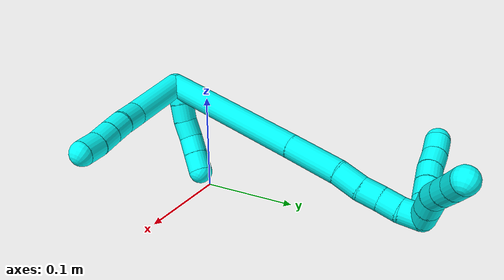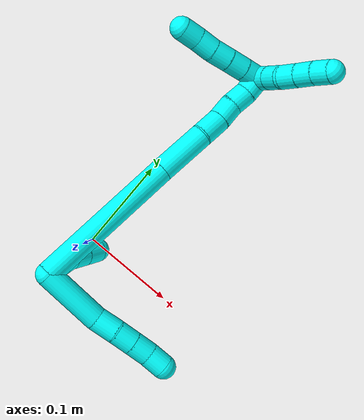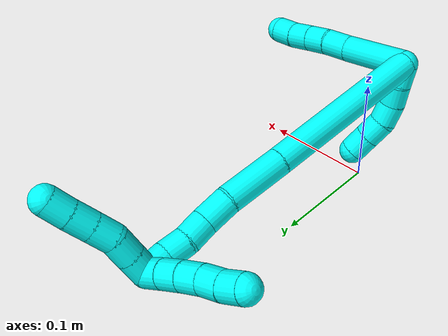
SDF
<sdf version="1.7">
 <world name="default">
  <model name="3">
   <static>0</static>
   <link name="3">
    <collision name="collision-cylinder-e_1_2_8">
     <pose>0.012824 0.003706 -0.029985 -3.01862 0.401419 -2.55392</pose>
     <geometry><cylinder><radius>0.0125</radius><length>0.065645</length></cylinder></geometry>
     <surface>
      <friction><ode><mu>1.16</mu><mu2>1.16</mu2><slip1>0</slip1><slip2>0</slip2></ode></friction>
      <contact><ode><kp>1e+06</kp><kd>1</kd><max_vel>0</max_vel><min_depth>0.001</min_depth></ode></contact>
     </surface>
    </collision>
    <visual name="visual-cylinder-e_1_2_8">
     <pose>0.012824 0.003706 -0.029985 -3.01862 0.401419 -2.55392</pose>
     <geometry><cylinder><radius>0.0125</radius><length>0.065645</length></cylinder></geometry>
     <material><ambient>0.003922 1 0.996078 1</ambient></material>
    </visual>
    <collision name="collision-cylinder-e_2_8_9">
     <pose>0.031125 0.011287 -0.069944 -2.77103 0.473021 -1.81966</pose>
     <geometry><cylinder><radius>0.0125</radius><length>0.02404</length></cylinder></geometry>
     <surface>
      <friction><ode><mu>1.16</mu><mu2>1.16</mu2><slip1>0</slip1><slip2>0</slip2></ode></friction>
      <contact><ode><kp>1e+06</kp><kd>1</kd><max_vel>0</max_vel><min_depth>0.001</min_depth></ode></contact>
     </surface>
    </collision>
    <visual name="visual-cylinder-e_2_8_9">
     <pose>0.031125 0.011287 -0.069944 -2.77103 0.473021 -1.81966</pose>
     <geometry><cylinder><radius>0.0125</radius><length>0.02404</length></cylinder></geometry>
     <material><ambient>0.003922 1 0.996078 1</ambient></material>
    </visual>
    <collision name="collision-cylinder-e_3_9_10">
     <pose>0.040329 0.017661 -0.088949 -2.87168 0.378648 -1.90863</pose>
     <geometry><cylinder><radius>0.0125</radius><length>0.02017</length></cylinder></geometry>
     <surface>
      <friction><ode><mu>1.16</mu><mu2>1.16</mu2><slip1>0</slip1><slip2>0</slip2></ode></friction>
      <contact><ode><kp>1e+06</kp><kd>1</kd><max_vel>0</max_vel><min_depth>0.001</min_depth></ode></contact>
     </surface>
    </collision>
    <visual name="visual-cylinder-e_3_9_10">
     <pose>0.040329 0.017661 -0.088949 -2.87168 0.378648 -1.90863</pose>
     <geometry><cylinder><radius>0.0125</radius><length>0.02017</length></cylinder></geometry>
     <material><ambient>0.003922 1 0.996078 1</ambient></material>
    </visual>
    <collision name="collision-cylinder-e_4_10_11">
     <pose>0.047591 0.022529 -0.107092 -2.88716 0.359059 -1.91373</pose>
     <geometry><cylinder><radius>0.0125</radius><length>0.020112</length></cylinder></geometry>
     <surface>
      <friction><ode><mu>1.16</mu><mu2>1.16</mu2><slip1>0</slip1><slip2>0</slip2></ode></friction>
      <contact><ode><kp>1e+06</kp><kd>1</kd><max_vel>0</max_vel><min_depth>0.001</min_depth></ode></contact>
     </surface>
    </collision>
    <visual name="visual-cylinder-e_4_10_11">
     <pose>0.047591 0.022529 -0.107092 -2.88716 0.359059 -1.91373</pose>
     <geometry><cylinder><radius>0.0125</radius><length>0.020112</length></cylinder></geometry>
     <material><ambient>0.003922 1 0.996078 1</ambient></material>
    </visual>
    <collision name="collision-cylinder-e_5_11_6">
     <pose>0.055799 0.026936 -0.124825 -2.90953 0.485488 -2.26173</pose>
     <geometry><cylinder><radius>0.0125</radius><length>0.020033</length></cylinder></geometry>
     <surface>
      <friction><ode><mu>1.16</mu><mu2>1.16</mu2><slip1>0</slip1><slip2>0</slip2></ode></friction>
      <contact><ode><kp>1e+06</kp><kd>1</kd><max_vel>0</max_vel><min_depth>0.001</min_depth></ode></contact>
     </surface>
    </collision>
    <visual name="visual-cylinder-e_5_11_6">
     <pose>0.055799 0.026936 -0.124825 -2.90953 0.485488 -2.26173</pose>
     <geometry><cylinder><radius>0.0125</radius><length>0.020033</length></cylinder></geometry>
     <material><ambient>0.003922 1 0.996078 1</ambient></material>
    </visual>
    <collision name="collision-cylinder-e_1_2_12">
     <pose>-0.008431 0.00091 -0.0053 -2.97163 -1.00306 2.83333</pose>
     <geometry><cylinder><radius>0.0125</radius><length>0.02</length></cylinder></geometry>
     <surface>
      <friction><ode><mu>1.16</mu><mu2>1.16</mu2><slip1>0</slip1><slip2>0</slip2></ode></friction>
      <contact><ode><kp>1e+06</kp><kd>1</kd><max_vel>0</max_vel><min_depth>0.001</min_depth></ode></contact>
     </surface>
    </collision>
    <visual name="visual-cylinder-e_1_2_12">
     <pose>-0.008431 0.00091 -0.0053 -2.97163 -1.00306 2.83333</pose>
     <geometry><cylinder><radius>0.0125</radius><length>0.02</length></cylinder></geometry>
     <material><ambient>0.003922 1 0.996078 1</ambient></material>
    </visual>
    <collision name="collision-cylinder-e_2_12_13">
     <pose>-0.024913 0.001271 -0.016507 3.04913 -0.93569 -2.95897</pose>
     <geometry><cylinder><radius>0.0125</radius><length>0.02</length></cylinder></geometry>
     <surface>
      <friction><ode><mu>1.16</mu><mu2>1.16</mu2><slip1>0</slip1><slip2>0</slip2></ode></friction>
      <contact><ode><kp>1e+06</kp><kd>1</kd><max_vel>0</max_vel><min_depth>0.001</min_depth></ode></contact>
     </surface>
    </collision>
    <visual name="visual-cylinder-e_2_12_13">
     <pose>-0.024913 0.001271 -0.016507 3.04913 -0.93569 -2.95897</pose>
     <geometry><cylinder><radius>0.0125</radius><length>0.02</length></cylinder></geometry>
     <material><ambient>0.003922 1 0.996078 1</ambient></material>
    </visual>
    <collision name="collision-cylinder-e_3_13_14">
     <pose>-0.040768 0.002634 -0.028366 -2.83101 -0.895588 2.51147</pose>
     <geometry><cylinder><radius>0.0125</radius><length>0.02</length></cylinder></geometry>
     <surface>
      <friction><ode><mu>1.16</mu><mu2>1.16</mu2><slip1>0</slip1><slip2>0</slip2></ode></friction>
      <contact><ode><kp>1e+06</kp><kd>1</kd><max_vel>0</max_vel><min_depth>0.001</min_depth></ode></contact>
     </surface>
    </collision>
    <visual name="visual-cylinder-e_3_13_14">
     <pose>-0.040768 0.002634 -0.028366 -2.83101 -0.895588 2.51147</pose>
     <geometry><cylinder><radius>0.0125</radius><length>0.02</length></cylinder></geometry>
     <material><ambient>0.003922 1 0.996078 1</ambient></material>
    </visual>
    <collision name="collision-cylinder-e_4_14_15">
     <pose>-0.054162 0.008639 -0.041529 -2.6252 -0.592916 1.71581</pose>
     <geometry><cylinder><radius>0.0125</radius><length>0.02</length></cylinder></geometry>
     <surface>
      <friction><ode><mu>1.16</mu><mu2>1.16</mu2><slip1>0</slip1><slip2>0</slip2></ode></friction>
      <contact><ode><kp>1e+06</kp><kd>1</kd><max_vel>0</max_vel><min_depth>0.001</min_depth></ode></contact>
     </surface>
    </collision>
    <visual name="visual-cylinder-e_4_14_15">
     <pose>-0.054162 0.008639 -0.041529 -2.6252 -0.592916 1.71581</pose>
     <geometry><cylinder><radius>0.0125</radius><length>0.02</length></cylinder></geometry>
     <material><ambient>0.003922 1 0.996078 1</ambient></material>
    </visual>
    <collision name="collision-cylinder-e_5_15_5">
     <pose>-0.06535 0.016823 -0.055946 -2.62539 -0.594383 1.71877</pose>
     <geometry><cylinder><radius>0.0125</radius><length>0.02</length></cylinder></geometry>
     <surface>
      <friction><ode><mu>1.16</mu><mu2>1.16</mu2><slip1>0</slip1><slip2>0</slip2></ode></friction>
      <contact><ode><kp>1e+06</kp><kd>1</kd><max_vel>0</max_vel><min_depth>0.001</min_depth></ode></contact>
     </surface>
    </collision>
    <visual name="visual-cylinder-e_5_15_5">
     <pose>-0.06535 0.016823 -0.055946 -2.62539 -0.594383 1.71877</pose>
     <geometry><cylinder><radius>0.0125</radius><length>0.02</length></cylinder></geometry>
     <material><ambient>0.003922 1 0.996078 1</ambient></material>
    </visual>
    <collision name="collision-cylinder-e_1_2_16">
     <pose>-0.034043 0.068262 -0.013925 -1.77203 -0.454524 0.551937</pose>
     <geometry><cylinder><radius>0.0125</radius><length>0.155082</length></cylinder></geometry>
     <surface>
      <friction><ode><mu>1.16</mu><mu2>1.16</mu2><slip1>0</slip1><slip2>0</slip2></ode></friction>
      <contact><ode><kp>1e+06</kp><kd>1</kd><max_vel>0</max_vel><min_depth>0.001</min_depth></ode></contact>
     </surface>
    </collision>
    <visual name="visual-cylinder-e_1_2_16">
     <pose>-0.034043 0.068262 -0.013925 -1.77203 -0.454524 0.551937</pose>
     <geometry><cylinder><radius>0.0125</radius><length>0.155082</length></cylinder></geometry>
     <material><ambient>0.003922 1 0.996078 1</ambient></material>
    </visual>
    <collision name="collision-cylinder-e_2_16_17">
     <pose>-0.080083 0.161251 -0.033227 -1.78493 -0.442699 0.544598</pose>
     <geometry><cylinder><radius>0.0125</radius><length>0.056008</length></cylinder></geometry>
     <surface>
      <friction><ode><mu>1.16</mu><mu2>1.16</mu2><slip1>0</slip1><slip2>0</slip2></ode></friction>
      <contact><ode><kp>1e+06</kp><kd>1</kd><max_vel>0</max_vel><min_depth>0.001</min_depth></ode></contact>
     </surface>
    </collision>
    <visual name="visual-cylinder-e_2_16_17">
     <pose>-0.080083 0.161251 -0.033227 -1.78493 -0.442699 0.544598</pose>
     <geometry><cylinder><radius>0.0125</radius><length>0.056008</length></cylinder></geometry>
     <material><ambient>0.003922 1 0.996078 1</ambient></material>
    </visual>
    <collision name="collision-cylinder-e_3_17_18">
     <pose>-0.099147 0.196515 -0.042175 -1.8975 -0.565945 0.770548</pose>
     <geometry><cylinder><radius>0.0125</radius><length>0.026361</length></cylinder></geometry>
     <surface>
      <friction><ode><mu>1.16</mu><mu2>1.16</mu2><slip1>0</slip1><slip2>0</slip2></ode></friction>
      <contact><ode><kp>1e+06</kp><kd>1</kd><max_vel>0</max_vel><min_depth>0.001</min_depth></ode></contact>
     </surface>
    </collision>
    <visual name="visual-cylinder-e_3_17_18">
     <pose>-0.099147 0.196515 -0.042175 -1.8975 -0.565945 0.770548</pose>
     <geometry><cylinder><radius>0.0125</radius><length>0.026361</length></cylinder></geometry>
     <material><ambient>0.003922 1 0.996078 1</ambient></material>
    </visual>
    <collision name="collision-cylinder-e_4_18_19">
     <pose>-0.112165 0.215884 -0.046942 -1.70546 -0.588699 0.667997</pose>
     <geometry><cylinder><radius>0.0125</radius><length>0.021435</length></cylinder></geometry>
     <surface>
      <friction><ode><mu>1.16</mu><mu2>1.16</mu2><slip1>0</slip1><slip2>0</slip2></ode></friction>
      <contact><ode><kp>1e+06</kp><kd>1</kd><max_vel>0</max_vel><min_depth>0.001</min_depth></ode></contact>
     </surface>
    </collision>
    <visual name="visual-cylinder-e_4_18_19">
     <pose>-0.112165 0.215884 -0.046942 -1.70546 -0.588699 0.667997</pose>
     <geometry><cylinder><radius>0.0125</radius><length>0.021435</length></cylinder></geometry>
     <material><ambient>0.003922 1 0.996078 1</ambient></material>
    </visual>
    <collision name="collision-cylinder-e_5_19_20">
     <pose>-0.122306 0.23388 -0.050356 -1.80819 -0.418143 0.526734</pose>
     <geometry><cylinder><radius>0.0125</radius><length>0.020634</length></cylinder></geometry>
     <surface>
      <friction><ode><mu>1.16</mu><mu2>1.16</mu2><slip1>0</slip1><slip2>0</slip2></ode></friction>
      <contact><ode><kp>1e+06</kp><kd>1</kd><max_vel>0</max_vel><min_depth>0.001</min_depth></ode></contact>
     </surface>
    </collision>
    <visual name="visual-cylinder-e_5_19_20">
     <pose>-0.122306 0.23388 -0.050356 -1.80819 -0.418143 0.526734</pose>
     <geometry><cylinder><radius>0.0125</radius><length>0.020634</length></cylinder></geometry>
     <material><ambient>0.003922 1 0.996078 1</ambient></material>
    </visual>
    <collision name="collision-cylinder-e_6_20_1">
     <pose>-0.131098 0.252188 -0.052807 -1.59637 -0.466215 0.477843</pose>
     <geometry><cylinder><radius>0.0125</radius><length>0.020481</length></cylinder></geometry>
     <surface>
      <friction><ode><mu>1.16</mu><mu2>1.16</mu2><slip1>0</slip1><slip2>0</slip2></ode></friction>
      <contact><ode><kp>1e+06</kp><kd>1</kd><max_vel>0</max_vel><min_depth>0.001</min_depth></ode></contact>
     </surface>
    </collision>
    <visual name="visual-cylinder-e_6_20_1">
     <pose>-0.131098 0.252188 -0.052807 -1.59637 -0.466215 0.477843</pose>
     <geometry><cylinder><radius>0.0125</radius><length>0.020481</length></cylinder></geometry>
     <material><ambient>0.003922 1 0.996078 1</ambient></material>
    </visual>
    <collision name="collision-cylinder-e_1_1_21">
     <pose>-0.13649 0.258697 -0.043427 0.267577 -0.078964 -0.010633</pose>
     <geometry><cylinder><radius>0.0125</radius><length>0.02</length></cylinder></geometry>
     <surface>
      <friction><ode><mu>1.16</mu><mu2>1.16</mu2><slip1>0</slip1><slip2>0</slip2></ode></friction>
      <contact><ode><kp>1e+06</kp><kd>1</kd><max_vel>0</max_vel><min_depth>0.001</min_depth></ode></contact>
     </surface>
    </collision>
    <visual name="visual-cylinder-e_1_1_21">
     <pose>-0.13649 0.258697 -0.043427 0.267577 -0.078964 -0.010633</pose>
     <geometry><cylinder><radius>0.0125</radius><length>0.02</length></cylinder></geometry>
     <material><ambient>0.003922 1 0.996078 1</ambient></material>
    </visual>
    <collision name="collision-cylinder-e_2_21_22">
     <pose>-0.138345 0.253182 -0.024296 0.293777 -0.106784 -0.015814</pose>
     <geometry><cylinder><radius>0.0125</radius><length>0.02</length></cylinder></geometry>
     <surface>
      <friction><ode><mu>1.16</mu><mu2>1.16</mu2><slip1>0</slip1><slip2>0</slip2></ode></friction>
      <contact><ode><kp>1e+06</kp><kd>1</kd><max_vel>0</max_vel><min_depth>0.001</min_depth></ode></contact>
     </surface>
    </collision>
    <visual name="visual-cylinder-e_2_21_22">
     <pose>-0.138345 0.253182 -0.024296 0.293777 -0.106784 -0.015814</pose>
     <geometry><cylinder><radius>0.0125</radius><length>0.02</length></cylinder></geometry>
     <material><ambient>0.003922 1 0.996078 1</ambient></material>
    </visual>
    <collision name="collision-cylinder-e_3_22_23">
     <pose>-0.140951 0.247204 -0.005397 0.31906 -0.154665 -0.024934</pose>
     <geometry><cylinder><radius>0.0125</radius><length>0.02</length></cylinder></geometry>
     <surface>
      <friction><ode><mu>1.16</mu><mu2>1.16</mu2><slip1>0</slip1><slip2>0</slip2></ode></friction>
      <contact><ode><kp>1e+06</kp><kd>1</kd><max_vel>0</max_vel><min_depth>0.001</min_depth></ode></contact>
     </surface>
    </collision>
    <visual name="visual-cylinder-e_3_22_23">
     <pose>-0.140951 0.247204 -0.005397 0.31906 -0.154665 -0.024934</pose>
     <geometry><cylinder><radius>0.0125</radius><length>0.02</length></cylinder></geometry>
     <material><ambient>0.003922 1 0.996078 1</ambient></material>
    </visual>
    <collision name="collision-cylinder-e_4_23_24">
     <pose>-0.144747 0.241905 0.013476 0.227689 -0.227478 -0.026121</pose>
     <geometry><cylinder><radius>0.0125</radius><length>0.02</length></cylinder></geometry>
     <surface>
      <friction><ode><mu>1.16</mu><mu2>1.16</mu2><slip1>0</slip1><slip2>0</slip2></ode></friction>
      <contact><ode><kp>1e+06</kp><kd>1</kd><max_vel>0</max_vel><min_depth>0.001</min_depth></ode></contact>
     </surface>
    </collision>
    <visual name="visual-cylinder-e_4_23_24">
     <pose>-0.144747 0.241905 0.013476 0.227689 -0.227478 -0.026121</pose>
     <geometry><cylinder><radius>0.0125</radius><length>0.02</length></cylinder></geometry>
     <material><ambient>0.003922 1 0.996078 1</ambient></material>
    </visual>
    <collision name="collision-cylinder-e_5_24_4">
     <pose>-0.147937 0.237364 0.032644 0.23749 -0.093609 -0.011176</pose>
     <geometry><cylinder><radius>0.0125</radius><length>0.02</length></cylinder></geometry>
     <surface>
      <friction><ode><mu>1.16</mu><mu2>1.16</mu2><slip1>0</slip1><slip2>0</slip2></ode></friction>
      <contact><ode><kp>1e+06</kp><kd>1</kd><max_vel>0</max_vel><min_depth>0.001</min_depth></ode></contact>
     </surface>
    </collision>
    <visual name="visual-cylinder-e_5_24_4">
     <pose>-0.147937 0.237364 0.032644 0.23749 -0.093609 -0.011176</pose>
     <geometry><cylinder><radius>0.0125</radius><length>0.02</length></cylinder></geometry>
     <material><ambient>0.003922 1 0.996078 1</ambient></material>
    </visual>
    <collision name="collision-cylinder-e_1_1_25">
     <pose>-0.127888 0.267483 -0.051984 -1.40057 0.89684 -0.770419</pose>
     <geometry><cylinder><radius>0.0125</radius><length>0.02</length></cylinder></geometry>
     <surface>
      <friction><ode><mu>1.16</mu><mu2>1.16</mu2><slip1>0</slip1><slip2>0</slip2></ode></friction>
      <contact><ode><kp>1e+06</kp><kd>1</kd><max_vel>0</max_vel><min_depth>0.001</min_depth></ode></contact>
     </surface>
    </collision>
    <visual name="visual-cylinder-e_1_1_25">
     <pose>-0.127888 0.267483 -0.051984 -1.40057 0.89684 -0.770419</pose>
     <geometry><cylinder><radius>0.0125</radius><length>0.02</length></cylinder></geometry>
     <material><ambient>0.003922 1 0.996078 1</ambient></material>
    </visual>
    <collision name="collision-cylinder-e_2_25_26">
     <pose>-0.112205 0.279703 -0.049814 -1.38949 0.905815 -0.770553</pose>
     <geometry><cylinder><radius>0.0125</radius><length>0.02</length></cylinder></geometry>
     <surface>
      <friction><ode><mu>1.16</mu><mu2>1.16</mu2><slip1>0</slip1><slip2>0</slip2></ode></friction>
      <contact><ode><kp>1e+06</kp><kd>1</kd><max_vel>0</max_vel><min_depth>0.001</min_depth></ode></contact>
     </surface>
    </collision>
    <visual name="visual-cylinder-e_2_25_26">
     <pose>-0.112205 0.279703 -0.049814 -1.38949 0.905815 -0.770553</pose>
     <geometry><cylinder><radius>0.0125</radius><length>0.02</length></cylinder></geometry>
     <material><ambient>0.003922 1 0.996078 1</ambient></material>
    </visual>
    <collision name="collision-cylinder-e_3_26_27">
     <pose>-0.098189 0.293612 -0.049574 -1.68169 0.661933 -0.733254</pose>
     <geometry><cylinder><radius>0.0125</radius><length>0.02</length></cylinder></geometry>
     <surface>
      <friction><ode><mu>1.16</mu><mu2>1.16</mu2><slip1>0</slip1><slip2>0</slip2></ode></friction>
      <contact><ode><kp>1e+06</kp><kd>1</kd><max_vel>0</max_vel><min_depth>0.001</min_depth></ode></contact>
     </surface>
    </collision>
    <visual name="visual-cylinder-e_3_26_27">
     <pose>-0.098189 0.293612 -0.049574 -1.68169 0.661933 -0.733254</pose>
     <geometry><cylinder><radius>0.0125</radius><length>0.02</length></cylinder></geometry>
     <material><ambient>0.003922 1 0.996078 1</ambient></material>
    </visual>
    <collision name="collision-cylinder-e_4_27_28">
     <pose>-0.085958 0.309352 -0.051198 -1.66556 0.654087 -0.714023</pose>
     <geometry><cylinder><radius>0.0125</radius><length>0.02</length></cylinder></geometry>
     <surface>
      <friction><ode><mu>1.16</mu><mu2>1.16</mu2><slip1>0</slip1><slip2>0</slip2></ode></friction>
      <contact><ode><kp>1e+06</kp><kd>1</kd><max_vel>0</max_vel><min_depth>0.001</min_depth></ode></contact>
     </surface>
    </collision>
    <visual name="visual-cylinder-e_4_27_28">
     <pose>-0.085958 0.309352 -0.051198 -1.66556 0.654087 -0.714023</pose>
     <geometry><cylinder><radius>0.0125</radius><length>0.02</length></cylinder></geometry>
     <material><ambient>0.003922 1 0.996078 1</ambient></material>
    </visual>
    <collision name="collision-cylinder-e_5_28_3">
     <pose>-0.073435 0.324851 -0.052847 -1.68844 0.699551 -0.778923</pose>
     <geometry><cylinder><radius>0.0125</radius><length>0.02</length></cylinder></geometry>
     <surface>
      <friction><ode><mu>1.16</mu><mu2>1.16</mu2><slip1>0</slip1><slip2>0</slip2></ode></friction>
      <contact><ode><kp>1e+06</kp><kd>1</kd><max_vel>0</max_vel><min_depth>0.001</min_depth></ode></contact>
     </surface>
    </collision>
    <visual name="visual-cylinder-e_5_28_3">
     <pose>-0.073435 0.324851 -0.052847 -1.68844 0.699551 -0.778923</pose>
     <geometry><cylinder><radius>0.0125</radius><length>0.02</length></cylinder></geometry>
     <material><ambient>0.003922 1 0.996078 1</ambient></material>
    </visual>
    <collision name="collision-sphere-3">
     <pose>-0.066996 0.33245 -0.053745 0 -0 0</pose>
     <geometry><sphere><radius>0.0125</radius></sphere></geometry>
     <surface>
      <friction><ode><mu>1.16</mu><mu2>1.16</mu2><slip1>0</slip1><slip2>0</slip2></ode></friction>
      <contact><ode><kp>1e+06</kp><kd>1</kd><max_vel>0</max_vel><min_depth>0.001</min_depth></ode></contact>
     </surface>
    </collision>
    <visual name="visual-sphere-3">
     <pose>-0.066996 0.33245 -0.053745 0 -0 0</pose>
     <geometry><sphere><radius>0.0125</radius></sphere></geometry>
     <material><ambient>0.003922 1 0.996078 1</ambient></material>
    </visual>
    <collision name="collision-sphere-28">
     <pose>-0.079874 0.317253 -0.051949 0 -0 0</pose>
     <geometry><sphere><radius>0.0125</radius></sphere></geometry>
     <surface>
      <friction><ode><mu>1.16</mu><mu2>1.16</mu2><slip1>0</slip1><slip2>0</slip2></ode></friction>
      <contact><ode><kp>1e+06</kp><kd>1</kd><max_vel>0</max_vel><min_depth>0.001</min_depth></ode></contact>
     </surface>
    </collision>
    <visual name="visual-sphere-28">
     <pose>-0.079874 0.317253 -0.051949 0 -0 0</pose>
     <geometry><sphere><radius>0.0125</radius></sphere></geometry>
     <material><ambient>0.003922 1 0.996078 1</ambient></material>
    </visual>
    <collision name="collision-sphere-27">
     <pose>-0.092043 0.301452 -0.050447 0 -0 0</pose>
     <geometry><sphere><radius>0.0125</radius></sphere></geometry>
     <surface>
      <friction><ode><mu>1.16</mu><mu2>1.16</mu2><slip1>0</slip1><slip2>0</slip2></ode></friction>
      <contact><ode><kp>1e+06</kp><kd>1</kd><max_vel>0</max_vel><min_depth>0.001</min_depth></ode></contact>
     </surface>
    </collision>
    <visual name="visual-sphere-27">
     <pose>-0.092043 0.301452 -0.050447 0 -0 0</pose>
     <geometry><sphere><radius>0.0125</radius></sphere></geometry>
     <material><ambient>0.003922 1 0.996078 1</ambient></material>
    </visual>
    <collision name="collision-sphere-26">
     <pose>-0.104335 0.285773 -0.048701 0 -0 0</pose>
     <geometry><sphere><radius>0.0125</radius></sphere></geometry>
     <surface>
      <friction><ode><mu>1.16</mu><mu2>1.16</mu2><slip1>0</slip1><slip2>0</slip2></ode></friction>
      <contact><ode><kp>1e+06</kp><kd>1</kd><max_vel>0</max_vel><min_depth>0.001</min_depth></ode></contact>
     </surface>
    </collision>
    <visual name="visual-sphere-26">
     <pose>-0.104335 0.285773 -0.048701 0 -0 0</pose>
     <geometry><sphere><radius>0.0125</radius></sphere></geometry>
     <material><ambient>0.003922 1 0.996078 1</ambient></material>
    </visual>
    <collision name="collision-sphere-25">
     <pose>-0.120074 0.273634 -0.050926 0 -0 0</pose>
     <geometry><sphere><radius>0.0125</radius></sphere></geometry>
     <surface>
      <friction><ode><mu>1.16</mu><mu2>1.16</mu2><slip1>0</slip1><slip2>0</slip2></ode></friction>
      <contact><ode><kp>1e+06</kp><kd>1</kd><max_vel>0</max_vel><min_depth>0.001</min_depth></ode></contact>
     </surface>
    </collision>
    <visual name="visual-sphere-25">
     <pose>-0.120074 0.273634 -0.050926 0 -0 0</pose>
     <geometry><sphere><radius>0.0125</radius></sphere></geometry>
     <material><ambient>0.003922 1 0.996078 1</ambient></material>
    </visual>
    <collision name="collision-sphere-4">
     <pose>-0.148871 0.235021 0.042321 0 -0 0</pose>
     <geometry><sphere><radius>0.0125</radius></sphere></geometry>
     <surface>
      <friction><ode><mu>1.16</mu><mu2>1.16</mu2><slip1>0</slip1><slip2>0</slip2></ode></friction>
      <contact><ode><kp>1e+06</kp><kd>1</kd><max_vel>0</max_vel><min_depth>0.001</min_depth></ode></contact>
     </surface>
    </collision>
    <visual name="visual-sphere-4">
     <pose>-0.148871 0.235021 0.042321 0 -0 0</pose>
     <geometry><sphere><radius>0.0125</radius></sphere></geometry>
     <material><ambient>0.003922 1 0.996078 1</ambient></material>
    </visual>
    <collision name="collision-sphere-24">
     <pose>-0.147002 0.239706 0.022967 0 -0 0</pose>
     <geometry><sphere><radius>0.0125</radius></sphere></geometry>
     <surface>
      <friction><ode><mu>1.16</mu><mu2>1.16</mu2><slip1>0</slip1><slip2>0</slip2></ode></friction>
      <contact><ode><kp>1e+06</kp><kd>1</kd><max_vel>0</max_vel><min_depth>0.001</min_depth></ode></contact>
     </surface>
    </collision>
    <visual name="visual-sphere-24">
     <pose>-0.147002 0.239706 0.022967 0 -0 0</pose>
     <geometry><sphere><radius>0.0125</radius></sphere></geometry>
     <material><ambient>0.003922 1 0.996078 1</ambient></material>
    </visual>
    <collision name="collision-sphere-23">
     <pose>-0.142491 0.244104 0.003985 0 -0 0</pose>
     <geometry><sphere><radius>0.0125</radius></sphere></geometry>
     <surface>
      <friction><ode><mu>1.16</mu><mu2>1.16</mu2><slip1>0</slip1><slip2>0</slip2></ode></friction>
      <contact><ode><kp>1e+06</kp><kd>1</kd><max_vel>0</max_vel><min_depth>0.001</min_depth></ode></contact>
     </surface>
    </collision>
    <visual name="visual-sphere-23">
     <pose>-0.142491 0.244104 0.003985 0 -0 0</pose>
     <geometry><sphere><radius>0.0125</radius></sphere></geometry>
     <material><ambient>0.003922 1 0.996078 1</ambient></material>
    </visual>
    <collision name="collision-sphere-22">
     <pose>-0.13941 0.250303 -0.014779 0 -0 0</pose>
     <geometry><sphere><radius>0.0125</radius></sphere></geometry>
     <surface>
      <friction><ode><mu>1.16</mu><mu2>1.16</mu2><slip1>0</slip1><slip2>0</slip2></ode></friction>
      <contact><ode><kp>1e+06</kp><kd>1</kd><max_vel>0</max_vel><min_depth>0.001</min_depth></ode></contact>
     </surface>
    </collision>
    <visual name="visual-sphere-22">
     <pose>-0.13941 0.250303 -0.014779 0 -0 0</pose>
     <geometry><sphere><radius>0.0125</radius></sphere></geometry>
     <material><ambient>0.003922 1 0.996078 1</ambient></material>
    </visual>
    <collision name="collision-sphere-21">
     <pose>-0.137279 0.256061 -0.033813 0 -0 0</pose>
     <geometry><sphere><radius>0.0125</radius></sphere></geometry>
     <surface>
      <friction><ode><mu>1.16</mu><mu2>1.16</mu2><slip1>0</slip1><slip2>0</slip2></ode></friction>
      <contact><ode><kp>1e+06</kp><kd>1</kd><max_vel>0</max_vel><min_depth>0.001</min_depth></ode></contact>
     </surface>
    </collision>
    <visual name="visual-sphere-21">
     <pose>-0.137279 0.256061 -0.033813 0 -0 0</pose>
     <geometry><sphere><radius>0.0125</radius></sphere></geometry>
     <material><ambient>0.003922 1 0.996078 1</ambient></material>
    </visual>
    <collision name="collision-sphere-1">
     <pose>-0.135701 0.261333 -0.053041 0 -0 0</pose>
     <geometry><sphere><radius>0.0125</radius></sphere></geometry>
     <surface>
      <friction><ode><mu>1.16</mu><mu2>1.16</mu2><slip1>0</slip1><slip2>0</slip2></ode></friction>
      <contact><ode><kp>1e+06</kp><kd>1</kd><max_vel>0</max_vel><min_depth>0.001</min_depth></ode></contact>
     </surface>
    </collision>
    <visual name="visual-sphere-1">
     <pose>-0.135701 0.261333 -0.053041 0 -0 0</pose>
     <geometry><sphere><radius>0.0125</radius></sphere></geometry>
     <material><ambient>0.003922 1 0.996078 1</ambient></material>
    </visual>
    <collision name="collision-sphere-6">
     <pose>0.060473 0.028974 -0.133447 0 -0 0</pose>
     <geometry><sphere><radius>0.0125</radius></sphere></geometry>
     <surface>
      <friction><ode><mu>1.16</mu><mu2>1.16</mu2><slip1>0</slip1><slip2>0</slip2></ode></friction>
      <contact><ode><kp>1e+06</kp><kd>1</kd><max_vel>0</max_vel><min_depth>0.001</min_depth></ode></contact>
     </surface>
    </collision>
    <visual name="visual-sphere-6">
     <pose>0.060473 0.028974 -0.133447 0 -0 0</pose>
     <geometry><sphere><radius>0.0125</radius></sphere></geometry>
     <material><ambient>0.003922 1 0.996078 1</ambient></material>
    </visual>
    <collision name="collision-sphere-11">
     <pose>0.051124 0.024898 -0.116204 0 -0 0</pose>
     <geometry><sphere><radius>0.0125</radius></sphere></geometry>
     <surface>
      <friction><ode><mu>1.16</mu><mu2>1.16</mu2><slip1>0</slip1><slip2>0</slip2></ode></friction>
      <contact><ode><kp>1e+06</kp><kd>1</kd><max_vel>0</max_vel><min_depth>0.001</min_depth></ode></contact>
     </surface>
    </collision>
    <visual name="visual-sphere-11">
     <pose>0.051124 0.024898 -0.116204 0 -0 0</pose>
     <geometry><sphere><radius>0.0125</radius></sphere></geometry>
     <material><ambient>0.003922 1 0.996078 1</ambient></material>
    </visual>
    <collision name="collision-sphere-10">
     <pose>0.044057 0.020159 -0.097981 0 -0 0</pose>
     <geometry><sphere><radius>0.0125</radius></sphere></geometry>
     <surface>
      <friction><ode><mu>1.16</mu><mu2>1.16</mu2><slip1>0</slip1><slip2>0</slip2></ode></friction>
      <contact><ode><kp>1e+06</kp><kd>1</kd><max_vel>0</max_vel><min_depth>0.001</min_depth></ode></contact>
     </surface>
    </collision>
    <visual name="visual-sphere-10">
     <pose>0.044057 0.020159 -0.097981 0 -0 0</pose>
     <geometry><sphere><radius>0.0125</radius></sphere></geometry>
     <material><ambient>0.003922 1 0.996078 1</ambient></material>
    </visual>
    <collision name="collision-sphere-9">
     <pose>0.036601 0.015162 -0.079918 0 -0 0</pose>
     <geometry><sphere><radius>0.0125</radius></sphere></geometry>
     <surface>
      <friction><ode><mu>1.16</mu><mu2>1.16</mu2><slip1>0</slip1><slip2>0</slip2></ode></friction>
      <contact><ode><kp>1e+06</kp><kd>1</kd><max_vel>0</max_vel><min_depth>0.001</min_depth></ode></contact>
     </surface>
    </collision>
    <visual name="visual-sphere-9">
     <pose>0.036601 0.015162 -0.079918 0 -0 0</pose>
     <geometry><sphere><radius>0.0125</radius></sphere></geometry>
     <material><ambient>0.003922 1 0.996078 1</ambient></material>
    </visual>
    <collision name="collision-sphere-2">
     <geometry><sphere><radius>0.0125</radius></sphere></geometry>
     <surface>
      <friction><ode><mu>1.16</mu><mu2>1.16</mu2><slip1>0</slip1><slip2>0</slip2></ode></friction>
      <contact><ode><kp>1e+06</kp><kd>1</kd><max_vel>0</max_vel><min_depth>0.001</min_depth></ode></contact>
     </surface>
    </collision>
    <visual name="visual-sphere-2">
     <geometry><sphere><radius>0.0125</radius></sphere></geometry>
     <material><ambient>0.003922 1 0.996078 1</ambient></material>
    </visual>
    <collision name="collision-sphere-19">
     <pose>-0.118116 0.224717 -0.048139 0 -0 0</pose>
     <geometry><sphere><radius>0.0125</radius></sphere></geometry>
     <surface>
      <friction><ode><mu>1.16</mu><mu2>1.16</mu2><slip1>0</slip1><slip2>0</slip2></ode></friction>
      <contact><ode><kp>1e+06</kp><kd>1</kd><max_vel>0</max_vel><min_depth>0.001</min_depth></ode></contact>
     </surface>
    </collision>
    <visual name="visual-sphere-19">
     <pose>-0.118116 0.224717 -0.048139 0 -0 0</pose>
     <geometry><sphere><radius>0.0125</radius></sphere></geometry>
     <material><ambient>0.003922 1 0.996078 1</ambient></material>
    </visual>
    <collision name="collision-sphere-8">
     <pose>0.025649 0.007412 -0.05997 0 -0 0</pose>
     <geometry><sphere><radius>0.0125</radius></sphere></geometry>
     <surface>
      <friction><ode><mu>1.16</mu><mu2>1.16</mu2><slip1>0</slip1><slip2>0</slip2></ode></friction>
      <contact><ode><kp>1e+06</kp><kd>1</kd><max_vel>0</max_vel><min_depth>0.001</min_depth></ode></contact>
     </surface>
    </collision>
    <visual name="visual-sphere-8">
     <pose>0.025649 0.007412 -0.05997 0 -0 0</pose>
     <geometry><sphere><radius>0.0125</radius></sphere></geometry>
     <material><ambient>0.003922 1 0.996078 1</ambient></material>
    </visual>
    <collision name="collision-sphere-12">
     <pose>-0.016862 0.001819 -0.0106 0 -0 0</pose>
     <geometry><sphere><radius>0.0125</radius></sphere></geometry>
     <surface>
      <friction><ode><mu>1.16</mu><mu2>1.16</mu2><slip1>0</slip1><slip2>0</slip2></ode></friction>
      <contact><ode><kp>1e+06</kp><kd>1</kd><max_vel>0</max_vel><min_depth>0.001</min_depth></ode></contact>
     </surface>
    </collision>
    <visual name="visual-sphere-12">
     <pose>-0.016862 0.001819 -0.0106 0 -0 0</pose>
     <geometry><sphere><radius>0.0125</radius></sphere></geometry>
     <material><ambient>0.003922 1 0.996078 1</ambient></material>
    </visual>
    <collision name="collision-sphere-13">
     <pose>-0.032963 0.000723 -0.022414 0 -0 0</pose>
     <geometry><sphere><radius>0.0125</radius></sphere></geometry>
     <surface>
      <friction><ode><mu>1.16</mu><mu2>1.16</mu2><slip1>0</slip1><slip2>0</slip2></ode></friction>
      <contact><ode><kp>1e+06</kp><kd>1</kd><max_vel>0</max_vel><min_depth>0.001</min_depth></ode></contact>
     </surface>
    </collision>
    <visual name="visual-sphere-13">
     <pose>-0.032963 0.000723 -0.022414 0 -0 0</pose>
     <geometry><sphere><radius>0.0125</radius></sphere></geometry>
     <material><ambient>0.003922 1 0.996078 1</ambient></material>
    </visual>
    <collision name="collision-sphere-14">
     <pose>-0.048574 0.004544 -0.034317 0 -0 0</pose>
     <geometry><sphere><radius>0.0125</radius></sphere></geometry>
     <surface>
      <friction><ode><mu>1.16</mu><mu2>1.16</mu2><slip1>0</slip1><slip2>0</slip2></ode></friction>
      <contact><ode><kp>1e+06</kp><kd>1</kd><max_vel>0</max_vel><min_depth>0.001</min_depth></ode></contact>
     </surface>
    </collision>
    <visual name="visual-sphere-14">
     <pose>-0.048574 0.004544 -0.034317 0 -0 0</pose>
     <geometry><sphere><radius>0.0125</radius></sphere></geometry>
     <material><ambient>0.003922 1 0.996078 1</ambient></material>
    </visual>
    <collision name="collision-sphere-15">
     <pose>-0.05975 0.012733 -0.048741 0 -0 0</pose>
     <geometry><sphere><radius>0.0125</radius></sphere></geometry>
     <surface>
      <friction><ode><mu>1.16</mu><mu2>1.16</mu2><slip1>0</slip1><slip2>0</slip2></ode></friction>
      <contact><ode><kp>1e+06</kp><kd>1</kd><max_vel>0</max_vel><min_depth>0.001</min_depth></ode></contact>
     </surface>
    </collision>
    <visual name="visual-sphere-15">
     <pose>-0.05975 0.012733 -0.048741 0 -0 0</pose>
     <geometry><sphere><radius>0.0125</radius></sphere></geometry>
     <material><ambient>0.003922 1 0.996078 1</ambient></material>
    </visual>
    <collision name="collision-sphere-5">
     <pose>-0.07095 0.020912 -0.063152 0 -0 0</pose>
     <geometry><sphere><radius>0.0125</radius></sphere></geometry>
     <surface>
      <friction><ode><mu>1.16</mu><mu2>1.16</mu2><slip1>0</slip1><slip2>0</slip2></ode></friction>
      <contact><ode><kp>1e+06</kp><kd>1</kd><max_vel>0</max_vel><min_depth>0.001</min_depth></ode></contact>
     </surface>
    </collision>
    <visual name="visual-sphere-5">
     <pose>-0.07095 0.020912 -0.063152 0 -0 0</pose>
     <geometry><sphere><radius>0.0125</radius></sphere></geometry>
     <material><ambient>0.003922 1 0.996078 1</ambient></material>
    </visual>
    <collision name="collision-sphere-16">
     <pose>-0.068086 0.136525 -0.02785 0 -0 0</pose>
     <geometry><sphere><radius>0.0125</radius></sphere></geometry>
     <surface>
      <friction><ode><mu>1.16</mu><mu2>1.16</mu2><slip1>0</slip1><slip2>0</slip2></ode></friction>
      <contact><ode><kp>1e+06</kp><kd>1</kd><max_vel>0</max_vel><min_depth>0.001</min_depth></ode></contact>
     </surface>
    </collision>
    <visual name="visual-sphere-16">
     <pose>-0.068086 0.136525 -0.02785 0 -0 0</pose>
     <geometry><sphere><radius>0.0125</radius></sphere></geometry>
     <material><ambient>0.003922 1 0.996078 1</ambient></material>
    </visual>
    <collision name="collision-sphere-17">
     <pose>-0.092079 0.185978 -0.038605 0 -0 0</pose>
     <geometry><sphere><radius>0.0125</radius></sphere></geometry>
     <surface>
      <friction><ode><mu>1.16</mu><mu2>1.16</mu2><slip1>0</slip1><slip2>0</slip2></ode></friction>
      <contact><ode><kp>1e+06</kp><kd>1</kd><max_vel>0</max_vel><min_depth>0.001</min_depth></ode></contact>
     </surface>
    </collision>
    <visual name="visual-sphere-17">
     <pose>-0.092079 0.185978 -0.038605 0 -0 0</pose>
     <geometry><sphere><radius>0.0125</radius></sphere></geometry>
     <material><ambient>0.003922 1 0.996078 1</ambient></material>
    </visual>
    <collision name="collision-sphere-18">
     <pose>-0.106214 0.207052 -0.045745 0 -0 0</pose>
     <geometry><sphere><radius>0.0125</radius></sphere></geometry>
     <surface>
      <friction><ode><mu>1.16</mu><mu2>1.16</mu2><slip1>0</slip1><slip2>0</slip2></ode></friction>
      <contact><ode><kp>1e+06</kp><kd>1</kd><max_vel>0</max_vel><min_depth>0.001</min_depth></ode></contact>
     </surface>
    </collision>
    <visual name="visual-sphere-18">
     <pose>-0.106214 0.207052 -0.045745 0 -0 0</pose>
     <geometry><sphere><radius>0.0125</radius></sphere></geometry>
     <material><ambient>0.003922 1 0.996078 1</ambient></material>
    </visual>
    <collision name="collision-sphere-20">
     <pose>-0.126495 0.243044 -0.052573 0 -0 0</pose>
     <geometry><sphere><radius>0.0125</radius></sphere></geometry>
     <surface>
      <friction><ode><mu>1.16</mu><mu2>1.16</mu2><slip1>0</slip1><slip2>0</slip2></ode></friction>
      <contact><ode><kp>1e+06</kp><kd>1</kd><max_vel>0</max_vel><min_depth>0.001</min_depth></ode></contact>
     </surface>
    </collision>
    <visual name="visual-sphere-20">
     <pose>-0.126495 0.243044 -0.052573 0 -0 0</pose>
     <geometry><sphere><radius>0.0125</radius></sphere></geometry>
     <material><ambient>0.003922 1 0.996078 1</ambient></material>
    </visual>
    <inertial>
     <pose>-0.058011 0.128203 -0.035945 0 -0 0</pose>
     <mass>0.75</mass>
     <inertia>
      <ixx>0.000381</ixx>
      <ixy>0</ixy>
      <ixz>0</ixz>
      <iyy>0.000229</iyy>
      <iyz>0</iyz>
      <izz>-0.000183</izz>
     </inertia>
    </inertial>
   </link>
   <pose>-0.00696 -0.044583 0.106007 0.414917 -0.886322 -0.57601</pose>
  </model>
 </world>
</sdf>
